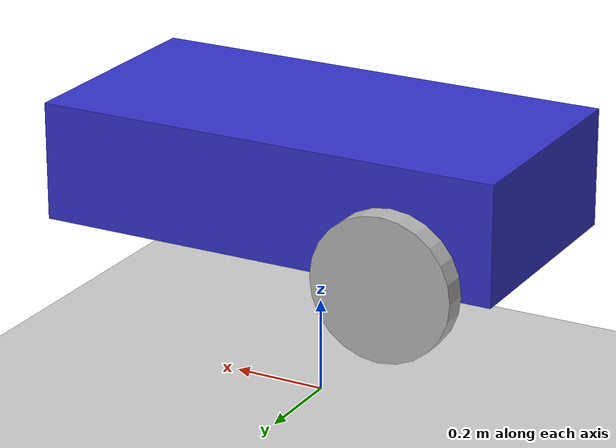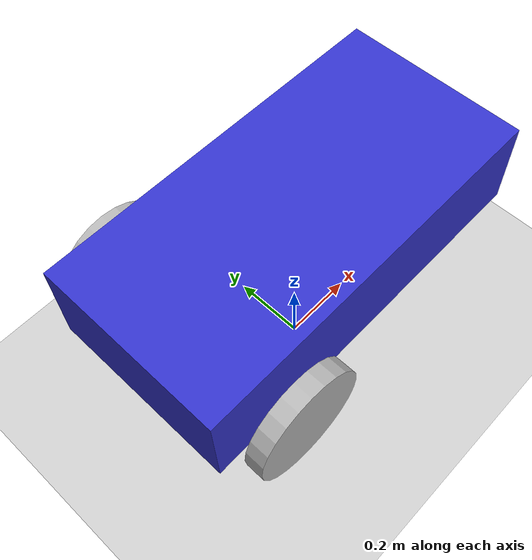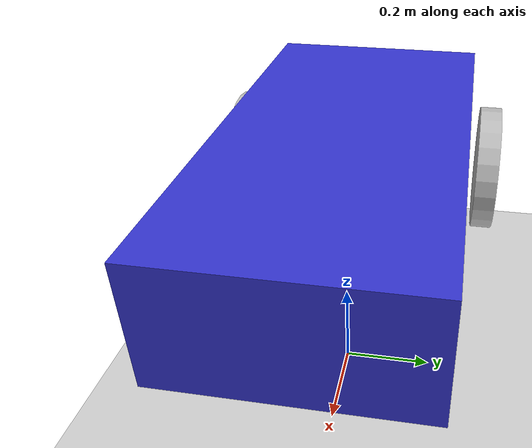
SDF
<?xml version='1.0' ?>
<sdf version='1.12'>
  <world name='default'>
    <gravity>0 0 -9.8</gravity>
    <magnetic_field>5.5645e-6 22.8758e-6 -42.3884e-6</magnetic_field>

    <physics name='default_physics' type='ode'>
      <max_step_size>0.001</max_step_size>
      <real_time_factor>1</real_time_factor>
    </physics>

    <scene>
      <ambient>0.4 0.4 0.4 1</ambient>
      <background>0.7 0.7 0.7 1</background>
      <shadows>true</shadows>
    </scene>

    <!-- Ground plane -->
    <model name='ground_plane'>
      <static>true</static>
      <link name='link'>
        <collision name='collision'>
          <geometry>
            <plane>
              <normal>0 0 1</normal>
              <size>100 100</size>
            </plane>
          </geometry>
        </collision>
        <visual name='visual'>
          <geometry>
            <plane>
              <normal>0 0 1</normal>
              <size>100 100</size>
            </plane>
          </geometry>
          <material>
            <ambient>0.8 0.8 0.8 1</ambient>
            <diffuse>0.8 0.8 0.8 1</diffuse>
          </material>
        </visual>
      </link>
    </model>

    <!-- A simple box robot -->
    <model name='box_robot'>
      <pose>0 0 0.5 0 0 0</pose>
      <link name='chassis'>
        <inertial>
          <mass>10</mass>
          <inertia>
            <ixx>0.833</ixx>
            <iyy>0.833</iyy>
            <izz>0.833</izz>
            <ixy>0</ixy>
            <ixz>0</ixz>
            <iyz>0</iyz>
          </inertia>
        </inertial>
        <collision name='collision'>
          <geometry>
            <box>
              <size>1 0.5 0.25</size>
            </box>
          </geometry>
        </collision>
        <visual name='visual'>
          <geometry>
            <box>
              <size>1 0.5 0.25</size>
            </box>
          </geometry>
          <material>
            <ambient>0.2 0.2 0.8 1</ambient>
            <diffuse>0.2 0.2 0.8 1</diffuse>
          </material>
        </visual>
        <sensor name='camera' type='camera'>
          <pose>0.5 0 0.15 0 0 0</pose>
          <update_rate>30</update_rate>
          <camera>
            <horizontal_fov>1.047</horizontal_fov>
            <image>
              <width>640</width>
              <height>480</height>
              <format>R8G8B8</format>
            </image>
            <clip>
              <near>0.1</near>
              <far>100</far>
            </clip>
          </camera>
        </sensor>
        <sensor name='imu_sensor' type='imu'>
          <update_rate>100</update_rate>
        </sensor>
      </link>

      <link name='left_wheel'>
        <pose>-0.3 0.3 -0.1 -1.5707 0 0</pose>
        <inertial>
          <mass>1</mass>
        </inertial>
        <collision name='collision'>
          <geometry>
            <cylinder>
              <radius>0.15</radius>
              <length>0.05</length>
            </cylinder>
          </geometry>
        </collision>
        <visual name='visual'>
          <geometry>
            <cylinder>
              <radius>0.15</radius>
              <length>0.05</length>
            </cylinder>
          </geometry>
        </visual>
      </link>

      <link name='right_wheel'>
        <pose>-0.3 -0.3 -0.1 -1.5707 0 0</pose>
        <inertial>
          <mass>1</mass>
        </inertial>
        <collision name='collision'>
          <geometry>
            <cylinder>
              <radius>0.15</radius>
              <length>0.05</length>
            </cylinder>
          </geometry>
        </collision>
        <visual name='visual'>
          <geometry>
            <cylinder>
              <radius>0.15</radius>
              <length>0.05</length>
            </cylinder>
          </geometry>
        </visual>
      </link>

      <link name='caster'>
        <pose>0.35 0 -0.125 0 0 0</pose>
        <inertial>
          <mass>0.5</mass>
        </inertial>
        <collision name='collision'>
          <geometry>
            <sphere>
              <radius>0.05</radius>
            </sphere>
          </geometry>
        </collision>
        <visual name='visual'>
          <geometry>
            <sphere>
              <radius>0.05</radius>
            </sphere>
          </geometry>
        </visual>
      </link>

      <joint name='left_wheel_joint' type='revolute'>
        <parent>chassis</parent>
        <child>left_wheel</child>
        <axis>
          <xyz>0 0 1</xyz>
          <limit>
            <lower>-1e16</lower>
            <upper>1e16</upper>
          </limit>
        </axis>
      </joint>

      <joint name='right_wheel_joint' type='revolute'>
        <parent>chassis</parent>
        <child>right_wheel</child>
        <axis>
          <xyz>0 0 1</xyz>
          <limit>
            <lower>-1e16</lower>
            <upper>1e16</upper>
          </limit>
        </axis>
      </joint>

      <joint name='caster_joint' type='ball'>
        <parent>chassis</parent>
        <child>caster</child>
      </joint>

      <plugin name='diff_drive' filename='libDiffDrive.so'>
        <left_joint>left_wheel_joint</left_joint>
        <right_joint>right_wheel_joint</right_joint>
        <wheel_separation>0.6</wheel_separation>
        <wheel_radius>0.15</wheel_radius>
      </plugin>
    </model>

    <!-- A directional sun light -->
    <light name='sun' type='directional'>
      <cast_shadows>true</cast_shadows>
      <diffuse>0.8 0.8 0.8 1</diffuse>
      <specular>0.2 0.2 0.2 1</specular>
      <direction>-0.5 0.1 -0.9</direction>
    </light>

  </world>
</sdf>
